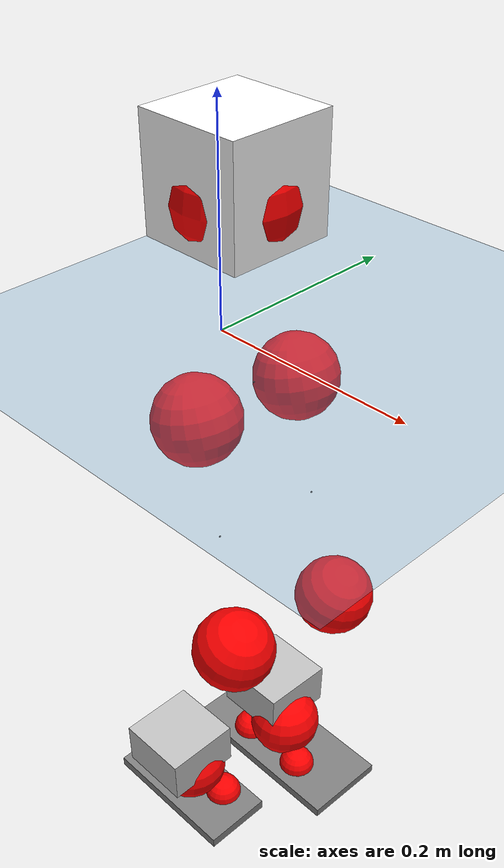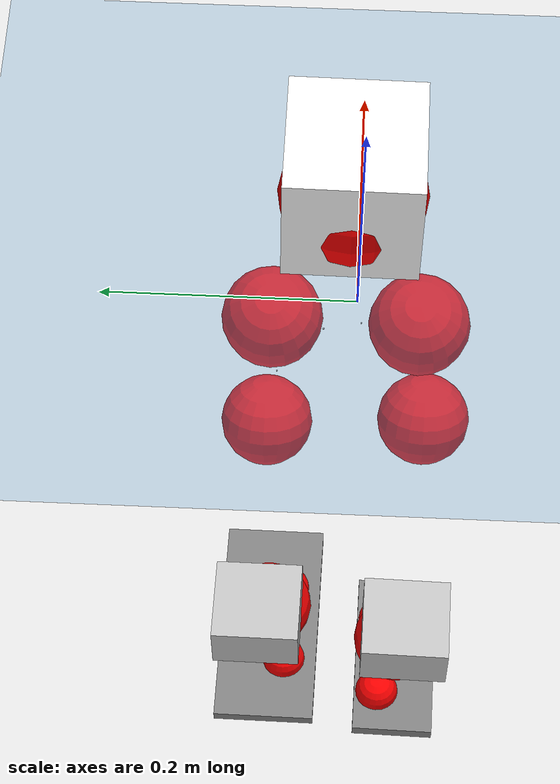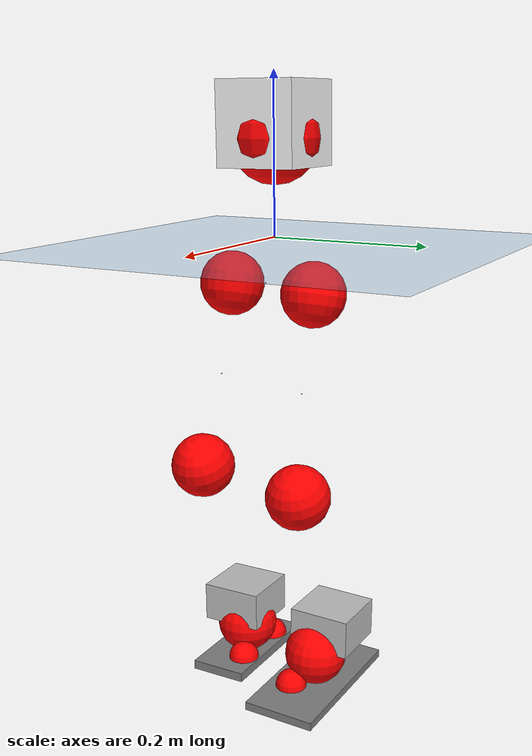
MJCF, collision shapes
<mujoco model="pi_12dof_release_v1">
  <compiler angle="radian" assetdir="assets" balanceinertia="true" inertiafromgeom="false"/>

  <option timestep="0.005" density="1.2" viscosity="2e-05"/>

  <size nkey="1"/>

  <visual>
    <quality shadowsize="8192"/>
    <map shadowclip="0.5"/>
  </visual>

  <default>
    <default class="/">
      <joint armature="0.01" damping="0.01" frictionloss="0.01"/>
      <geom contype="0" conaffinity="0" group="1" solref="-1000 -80"/>
      <site size="0.01 0.005 0.005" group="5"/>
      <general forcelimited="true" biastype="affine" gainprm="20" biasprm="0 -20 -0.5"/>
      <default class="foot">
        <geom size="0.0845 0.036 0.005" type="box" condim="6" group="4" priority="1" friction="0.9 0.2 0.2" solimp="0.015 1 0.005"/>
      </default>
      <default class="reward_collision_sphere">
        <geom group="5" rgba="1 0 0 1"/>
      </default>
    </default>
  </default>

  <asset>
    <texture type="skybox" colorspace="auto" name="//unnamed_texture_0" builtin="gradient" rgb1="0.95 0.95 0.95" rgb2="0.95 0.95 0.95" width="100" height="600"/>
    <texture type="2d" colorspace="auto" name="texplane" builtin="checker" rgb1="0.345 0.575 0.748" rgb2="0.345 0.575 0.748" markrgb="1 1 1" width="512" height="512"/>
    <material name="MatPlane" class="/" texture="texplane" texuniform="true" texrepeat="2 2" specular="0.9"/>
    <mesh name="baselink_1" class="/" file="baselink_1.STL"/>
    <mesh name="r_hip_pitch_link" class="/" file="r_hip_pitch_link.STL"/>
    <mesh name="r_hip_roll_link" class="/" file="r_hip_roll_link.STL"/>
    <mesh name="r_thigh_link" class="/" file="r_thigh_link.STL"/>
    <mesh name="r_calf_link" class="/" file="r_calf_link.STL"/>
    <mesh name="r_ankle_pitch_link" class="/" file="r_ankle_pitch_link.STL"/>
    <mesh name="r_ankle_roll_link" class="/" file="r_ankle_roll_link.STL"/>
    <mesh name="l_hip_pitch_link" class="/" file="l_hip_pitch_link.STL"/>
    <mesh name="l_hip_roll_link" class="/" file="l_hip_roll_link.STL"/>
    <mesh name="l_thigh_link" class="/" file="l_thigh_link.STL"/>
    <mesh name="l_calf_link" class="/" file="l_calf_link.STL"/>
    <mesh name="l_ankle_pitch_link" class="/" file="l_ankle_pitch_link.STL"/>
    <mesh name="l_ankle_roll_link" class="/" file="l_ankle_roll_link.STL"/>
  </asset>

  <worldbody>
    <geom name="floor" class="/" size="100 100 0.125" type="plane" group="0" material="MatPlane"/>
    <light name="toplight_shadow" class="/" pos="0 0 5" dir="0.0990148 0.0990148 -0.990148" type="directional" ambient="0.04 0.04 0.04" diffuse="0.55 0.55 0.55" specular="0.12 0.12 0.12"/>
    <light name="toplight_fill" class="/" pos="0 0 5" dir="0.0990148 0.0990148 -0.990148" type="directional" castshadow="false" ambient="0.04 0.04 0.04" diffuse="0.3 0.3 0.3" specular="0.08 0.08 0.08"/>
    <body name="trunk" pos="0.0119453 0.00777196 0.00390849" quat="0.999989 0.00310948 1.46972e-05 -0.00347256">
      <inertial pos="0.0140385 -0.00088668 0.0663909" quat="0.684392 0.0165635 0.0190636 0.728677" mass="2.14567" diaginertia="0.000622068 0.00304589 0.0455718"/>
      <joint name="//unnamed_joint_0" type="free"/>
      <geom name="//unnamed_geom_1" class="/" type="mesh" density="0" rgba="1 1 1 1" mesh="baselink_1"/>
      <geom name="//unnamed_geom_2" class="/" size="0.0507997 0.0507997 0.0507997" pos="0 0 0.133272" type="box" rgba="1 1 1 1"/>
      <geom name="//unnamed_geom_3" class="reward_collision_sphere" size="0.0558797" pos="0 0 0.116613"/>
      <site name="imu" class="/" pos="0.00628502 -0.0177601 0.011789" size="0.0101599"/>
      <camera name="track" class="/" pos="0 -1.61417 0" quat="0.707107 0.707107 0 0" mode="trackcom"/>
      <camera name="ego_camera" class="/" pos="0.0431245 0 0.299862" quat="-0.5 -0.5 0.5 0.5"/>
      <body name="r_hip_pitch_link" pos="0.00653961 -0.0118323 -0.0589331" quat="0.992124 -0.00527354 -0.125121 0.00279245">
        <inertial pos="0.0133992 -0.0391191 0.00530069" quat="-0.0169755 0.708156 -0.0258793 0.705378" mass="0.339369" diaginertia="5.99836e-06 3.33944e-05 0.000860955"/>
        <joint name="r_hip_pitch_joint" class="/" pos="0 0 0" axis="-0.0388762 -0.999242 0.00191017" stiffness="0.0586091" range="-1.76037 1.19081" armature="0.0104253" damping="0.0347556" frictionloss="0.00612017"/>
        <geom name="//unnamed_geom_4" class="/" type="mesh" density="0" rgba="0.75294 0.75294 0.75294 1" mesh="r_hip_pitch_link"/>
        <geom name="//unnamed_geom_5" class="/" size="0.000507997 0.000507997 0.000507997" type="box" rgba="0.75294 0.75294 0.75294 1"/>
        <body name="r_hip_roll_link" pos="0.00202847 -0.046204 -0.00366948" quat="1 -5.00492e-05 2.42468e-05 -2.61571e-05">
          <inertial pos="-0.0129075 0.000522645 -0.112041" quat="0.706656 -0.0766085 -0.084268 0.698331" mass="0.425348" diaginertia="2.12925e-05 9.41677e-05 0.00175715"/>
          <joint name="r_hip_roll_joint" class="/" pos="0 0 0" axis="-0.999994 -5.57986e-06 -0.0034172" range="0.0708551 0.386714" armature="0.0161754" damping="0.0446225" frictionloss="0.0107582"/>
          <geom name="//unnamed_geom_6" class="/" type="mesh" density="0" rgba="0.75294 0.75294 0.75294 1" mesh="r_hip_roll_link"/>
          <geom name="//unnamed_geom_7" class="/" size="0.000507997 0.000507997 0.000507997" type="box" rgba="0.75294 0.75294 0.75294 1"/>
          <geom name="//unnamed_geom_8" class="reward_collision_sphere" size="0.0406397"/>
          <body name="r_thigh_link" pos="-0.00117737 -0.00135556 -0.115259" quat="0.999994 0.00335151 -0.000759074 -0.00100816">
            <inertial pos="-0.0063532 -0.00462693 -0.0707961" quat="0.756149 0.652976 0.0192497 -0.0385912" mass="0.113931" diaginertia="8.11184e-06 3.00825e-05 0.00080663"/>
            <joint name="r_thigh_joint" class="/" pos="0 0 0" axis="0.0432857 0.0124805 -0.998985" stiffness="0.0589398" range="-0.309501 0.451999" armature="0.0156562" damping="0" frictionloss="0.00974824"/>
            <geom name="//unnamed_geom_9" class="/" type="mesh" density="0" rgba="0.75294 0.75294 0.75294 1" mesh="r_thigh_link"/>
            <geom name="//unnamed_geom_10" class="/" size="0.000507997 0.000507997 0.000507997" type="box" rgba="0.75294 0.75294 0.75294 1"/>
            <body name="r_calf_link" pos="-0.000606408 -0.0120546 -0.119275" quat="0.947188 0.00020606 0.320673 -0.00193901">
              <inertial pos="-0.00917765 -0.00320668 -0.116485" quat="0.999956 -0.00185036 0.00247569 0.00886099" mass="0.636386" diaginertia="0.000201599 0.0011042 0.00219863"/>
              <joint name="r_calf_joint" class="/" pos="0 0 0" axis="-0.00288355 -0.999996 0.000371046" range="-1.66241 0.852859" armature="0.00288316" damping="0.0525491" frictionloss="0.00360862"/>
              <geom name="//unnamed_geom_11" class="/" type="mesh" density="0" rgba="0.75294 0.75294 0.75294 1" mesh="r_calf_link"/>
              <geom name="//unnamed_geom_12" class="/" size="0.000507997 0.000507997 0.000507997" type="box" rgba="0.75294 0.75294 0.75294 1"/>
              <geom name="//unnamed_geom_13" class="reward_collision_sphere" size="0.0406397"/>
              <body name="r_ankle_pitch_link" pos="0.00122258 0.00273805 -0.243738" quat="0.979347 0.00320263 -0.202134 -0.00325549">
                <inertial pos="0.010746 0.0154575 0.00250755" quat="0.00207586 0.708434 -0.00288938 0.705768" mass="0.223962" diaginertia="2.0558e-05 8.37599e-05 0.00179013"/>
                <joint name="r_ankle_pitch_joint" class="/" pos="0 0 0" axis="-0.0606872 -0.998001 -0.0176318" stiffness="0.0576575" range="-1.11213 0.326293" armature="0.010305" damping="0.0144724" frictionloss="0.0139793"/>
                <geom name="//unnamed_geom_14" class="/" type="mesh" density="0" rgba="0.75294 0.75294 0.75294 1" mesh="r_ankle_pitch_link"/>
                <geom name="//unnamed_geom_15" class="/" size="0.0396238 0.0406397 0.0253998" type="box" rgba="0.75294 0.75294 0.75294 1"/>
                <body name="r_ankle_roll_link" pos="0.0359872 0.00679995 0.000708739" quat="1 2.19364e-06 1.5292e-05 -1.69436e-06">
                  <inertial pos="-0.0192397 -0.000100505 -0.0216531" quat="0.559432 0.430136 0.436095 0.558426" mass="0.4656" diaginertia="5.4844e-05 0.000342527 0.00324216"/>
                  <joint name="r_ankle_roll_joint" class="/" pos="0 0 0" axis="-0.997554 0.0698695 0.0019858" range="-0.160359 0.345514" armature="0.00998675" damping="0.0350267" frictionloss="0.0108743"/>
                  <geom name="//unnamed_geom_16" class="/" type="mesh" density="0" rgba="0.75294 0.75294 0.75294 1" mesh="r_ankle_roll_link"/>
                  <geom name="//unnamed_geom_17" class="/" type="mesh" rgba="0.75294 0.75294 0.75294 1" mesh="r_ankle_roll_link"/>
                  <geom name="right_foot" class="foot" size="0.0799004 0.0376935 0.00597282" pos="-0.0293247 0 -0.0732997"/>
                  <geom name="//unnamed_geom_19" class="reward_collision_sphere" size="0.0406397" pos="-0.0287497 0 -0.033318"/>
                  <geom name="//unnamed_geom_20" class="reward_collision_sphere" size="0.0203199" pos="0.00862491 0.0161417 -0.0666361"/>
                  <geom name="//unnamed_geom_21" class="reward_collision_sphere" size="0.0203199" pos="-0.0689993 0.0161417 -0.0666361"/>
                  <site name="right_foot" class="foot" pos="-0.0293247 0 -0.0732997" size="0.0101599"/>
                </body>
              </body>
            </body>
          </body>
        </body>
      </body>
      <body name="l_hip_pitch_link" pos="0.00115591 0.0179021 -0.0612451" quat="0.991737 -0.00584764 -0.12815 0.000574429">
        <inertial pos="-0.0114715 0.0452279 -0.000607225" quat="-0.0375698 0.704276 0.029143 0.708332" mass="0.404797" diaginertia="8.11742e-06 3.26697e-05 0.00134257"/>
        <joint name="l_hip_pitch_joint" class="/" pos="0 0 0" axis="0.000338124 0.999995 -0.00310453" stiffness="0.0157257" range="-1.37141 1.78382" armature="0.00576431" damping="0.0450256" frictionloss="0.00797721"/>
        <geom name="//unnamed_geom_22" class="/" type="mesh" density="0" rgba="0.75294 0.75294 0.75294 1" mesh="l_hip_pitch_link"/>
        <geom name="//unnamed_geom_23" class="/" size="0.000507997 0.000507997 0.000507997" type="box" rgba="0.75294 0.75294 0.75294 1"/>
        <body name="l_hip_roll_link" pos="0.0113456 0.0414245 -0.00828228" quat="0.999983 -0.00323599 0.00442994 -0.00172898">
          <inertial pos="0.000773649 0.00164399 -0.100364" quat="0.67712 -0.0661932 -0.0397368 0.731812" mass="0.459534" diaginertia="2.03938e-05 0.000106235 0.00159234"/>
          <joint name="l_hip_roll_joint" class="/" pos="0 0 0" axis="-0.999696 0.021249 0.0125418" range="-0.445983 0.192734" armature="0.00587041" damping="0.0694331" frictionloss="0.00750269"/>
          <geom name="//unnamed_geom_24" class="/" type="mesh" density="0" rgba="0.75294 0.75294 0.75294 1" mesh="l_hip_roll_link"/>
          <geom name="//unnamed_geom_25" class="/" size="0.000507997 0.000507997 0.000507997" type="box" rgba="0.75294 0.75294 0.75294 1"/>
          <geom name="//unnamed_geom_26" class="reward_collision_sphere" size="0.0406397"/>
          <body name="l_thigh_link" pos="-0.003018 -0.000768661 -0.120631" quat="0.999999 -9.53309e-05 -0.000400903 0.000931769">
            <inertial pos="0.00137286 -0.00103856 -0.0854084" quat="0.675571 0.737282 -0.0042525 0.00137681" mass="0.11822" diaginertia="7.86125e-06 3.34691e-05 0.000748582"/>
            <joint name="l_thigh_joint" class="/" pos="0 0 0" axis="-0.00290165 -0.00800854 -0.999964" range="-0.589794 0.296268" armature="0.0134208" damping="0.00213363" frictionloss="0.0103572"/>
            <geom name="//unnamed_geom_27" class="/" type="mesh" density="0" rgba="0.75294 0.75294 0.75294 1" mesh="l_thigh_link"/>
            <geom name="//unnamed_geom_28" class="/" size="0.000507997 0.000507997 0.000507997" type="box" rgba="0.75294 0.75294 0.75294 1"/>
            <body name="l_calf_link" pos="-0.00275548 0.0116996 -0.126182" quat="0.947504 -0.00120472 0.31972 -0.00376526">
              <inertial pos="0.000118832 -0.00599491 -0.117385" quat="0.998391 -0.0197898 0.0320393 0.0424052" mass="0.837935" diaginertia="0.000200529 0.00107636 0.0023115"/>
              <joint name="l_calf_joint" class="/" pos="0 0 0" axis="0.00414278 0.999881 0.0148454" stiffness="0.00622423" range="-0.629093 1.64555" armature="0.0164668" damping="0.00200615" frictionloss="0.00398966"/>
              <geom name="//unnamed_geom_29" class="/" type="mesh" density="0" rgba="0.75294 0.75294 0.75294 1" mesh="l_calf_link"/>
              <geom name="//unnamed_geom_30" class="/" size="0.000507997 0.000507997 0.000507997" type="box" rgba="0.75294 0.75294 0.75294 1"/>
              <geom name="//unnamed_geom_31" class="reward_collision_sphere" size="0.0406397"/>
              <body name="l_ankle_pitch_link" pos="0.000926008 0.00662375 -0.223813" quat="0.979838 -0.00194365 -0.199784 -0.000601584">
                <inertial pos="0.00304019 0.00453771 0.000878429" quat="-0.000198348 0.710692 0.00623378 0.703476" mass="0.205152" diaginertia="2.12927e-05 7.8032e-05 0.00182688"/>
                <joint name="l_ankle_pitch_joint" class="/" pos="0 0 0" axis="0.00125719 0.999991 0.00397658" range="-0.494851 1.28929" armature="0.0105271" damping="0" frictionloss="0.00794716"/>
                <geom name="//unnamed_geom_32" class="/" type="mesh" density="0" rgba="0.75294 0.75294 0.75294 1" mesh="l_ankle_pitch_link"/>
                <geom name="//unnamed_geom_33" class="/" size="0.0396238 0.0406397 0.0253998" type="box" rgba="0.75294 0.75294 0.75294 1"/>
                <body name="l_ankle_roll_link" pos="0.0572861 -0.00832726 -0.00169235" quat="1 0.000272103 0.000361189 0.000209153">
                  <inertial pos="-0.027004 -0.00370662 -0.0299974" quat="0.565978 0.415529 0.428902 0.568373" mass="0.526911" diaginertia="7.60413e-05 0.000448881 0.00380941"/>
                  <joint name="l_ankle_roll_joint" class="/" pos="0 0 0" axis="-0.998962 -0.0450247 0.0068984" stiffness="0.031357" range="-0.109107 0.163627" armature="0.0104903" damping="0" frictionloss="0.0091123"/>
                  <geom name="//unnamed_geom_34" class="/" type="mesh" density="0" rgba="0.75294 0.75294 0.75294 1" mesh="l_ankle_roll_link"/>
                  <geom name="//unnamed_geom_35" class="/" type="mesh" rgba="0.75294 0.75294 0.75294 1" mesh="l_ankle_roll_link"/>
                  <geom name="left_foot" class="foot" size="0.102121 0.0472395 0.00522218" pos="-0.0293247 0 -0.0732997"/>
                  <geom name="//unnamed_geom_37" class="reward_collision_sphere" size="0.0406397" pos="-0.0287497 0 -0.033318"/>
                  <geom name="//unnamed_geom_38" class="reward_collision_sphere" size="0.0203199" pos="0.00862491 -0.0161417 -0.0666361"/>
                  <geom name="//unnamed_geom_39" class="reward_collision_sphere" size="0.0203199" pos="-0.0689993 -0.0161417 -0.0666361"/>
                  <site name="left_foot" class="foot" pos="-0.0293247 0 -0.0732997" size="0.0101599"/>
                </body>
              </body>
            </body>
          </body>
        </body>
      </body>
    </body>
  </worldbody>

  <contact>
    <pair class="/" geom1="floor" geom2="right_foot" name="//unnamed_contact_1"/>
    <pair class="/" geom1="floor" geom2="left_foot" name="//unnamed_contact_0"/>
  </contact>

  <actuator>
    <general name="r_hip_pitch_joint" class="/" joint="r_hip_pitch_joint" forcerange="-22.6215 22.6215" gainprm="20.0399" biasprm="0 -20.0399 -0.5883"/>
    <general name="r_hip_roll_joint" class="/" joint="r_hip_roll_joint" forcerange="-20.8189 20.8189" gainprm="20.0399" biasprm="0 -20.0399 -0.5883"/>
    <general name="r_thigh_joint" class="/" joint="r_thigh_joint" forcerange="-20.4992 20.4992" gainprm="20.0399" biasprm="0 -20.0399 -0.5883"/>
    <general name="r_calf_joint" class="/" joint="r_calf_joint" forcerange="-22.0851 22.0851" gainprm="20.0399" biasprm="0 -20.0399 -0.5883"/>
    <general name="r_ankle_pitch_joint" class="/" joint="r_ankle_pitch_joint" forcerange="-20.2905 20.2905" gainprm="20.0399" biasprm="0 -20.0399 -0.5883"/>
    <general name="r_ankle_roll_joint" class="/" joint="r_ankle_roll_joint" forcerange="-22.1685 22.1685" gainprm="20.0399" biasprm="0 -20.0399 -0.5883"/>
    <general name="l_hip_pitch_joint" class="/" joint="l_hip_pitch_joint" forcerange="-20.8272 20.8272" gainprm="20.0399" biasprm="0 -20.0399 -0.5883"/>
    <general name="l_hip_roll_joint" class="/" joint="l_hip_roll_joint" forcerange="-25.7814 25.7814" gainprm="20.0399" biasprm="0 -20.0399 -0.5883"/>
    <general name="l_thigh_joint" class="/" joint="l_thigh_joint" forcerange="-21.129 21.129" gainprm="20.0399" biasprm="0 -20.0399 -0.5883"/>
    <general name="l_calf_joint" class="/" joint="l_calf_joint" forcerange="-10.9556 10.9556" gainprm="20.0399" biasprm="0 -20.0399 -0.5883"/>
    <general name="l_ankle_pitch_joint" class="/" joint="l_ankle_pitch_joint" forcerange="-20.8835 20.8835" gainprm="20.0399" biasprm="0 -20.0399 -0.5883"/>
    <general name="l_ankle_roll_joint" class="/" joint="l_ankle_roll_joint" forcerange="-28.0471 28.0471" gainprm="20.0399" biasprm="0 -20.0399 -0.5883"/>
  </actuator>

  <sensor>
    <gyro site="imu" name="imu_angular_velocity"/>
    <velocimeter site="imu" name="imu_linear_velocity"/>
    <framelinvel objtype="site" objname="left_foot" name="left_foot_global_linear_velocity"/>
    <framelinvel objtype="site" objname="right_foot" name="right_foot_global_linear_velocity"/>
  </sensor>

  <keyframe>
    <key name="home" qpos="0 0 0.291 1 0 0 0 0.4 0 0 -0.8 0.4 0 -0.4 0 0 0.8 -0.4 0"/>
  </keyframe>
</mujoco>
